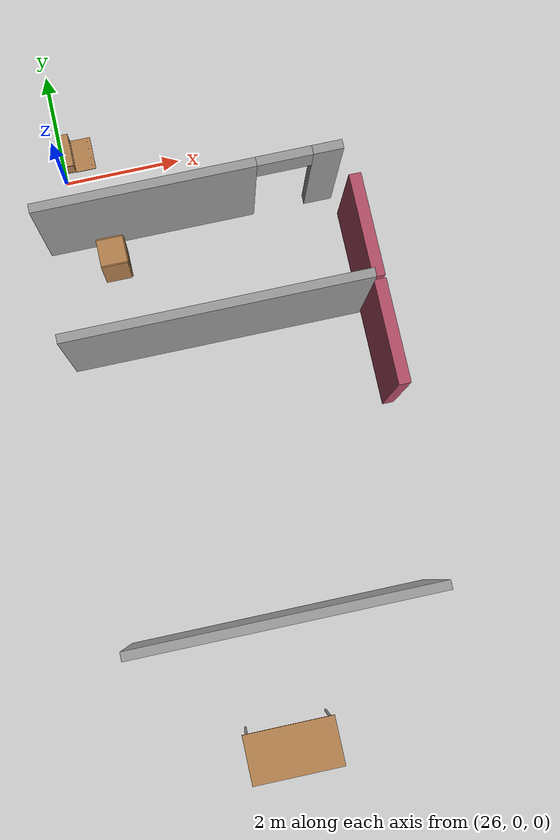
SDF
<sdf version="1.6">
 <world name="default">
  <model name="ground_plane">
   <static>1</static>
   <link name="link">
    <collision name="collision">
     <geometry><plane><normal>0 0 1</normal><size>100 100</size></plane></geometry>
     <surface><friction><ode><mu>100</mu><mu2>50</mu2></ode></friction></surface>
    </collision>
    <visual name="visual">
     <cast_shadows>0</cast_shadows>
     <geometry><plane><normal>0 0 1</normal><size>100 100</size></plane></geometry>
     <material>
      <script><uri>file://media/materials/scripts/gazebo.material</uri><name>Gazebo/Grey</name></script>
     </material>
    </visual>
   </link>
  </model>
  <model name="fin_se1f1.sdf">
   <pose>1.8125 -2.2901 0 0 -0 0</pose>
   <link name="Wall_192">
    <pose>26.1753 1.13284 0 0 -0 0</pose>
    <visual name="Wall_192_Visual_0">
     <pose>-0.694062 0 1.25 0 -0 0</pose>
     <geometry><box><size>3.61188 0.15 2.5</size></box></geometry>
     <material>
      <script><uri>file://media/materials/scripts/gazebo.material</uri><name>Gazebo/Grey</name></script>
      <ambient>1 1 1 1</ambient>
     </material>
     <meta><layer>0</layer></meta>
    </visual>
    <collision name="Wall_192_Collision_0">
     <geometry><box><size>3.61188 0.15 2.5</size></box></geometry>
     <pose>-0.694062 0 1.25 0 -0 0</pose>
    </collision>
    <visual name="Wall_192_Visual_1">
     <pose>2.25594 0 1.25 0 -0 0</pose>
     <geometry><box><size>0.488124 0.15 2.5</size></box></geometry>
     <material>
      <script><uri>file://media/materials/scripts/gazebo.material</uri><name>Gazebo/Grey</name></script>
      <ambient>1 1 1 1</ambient>
     </material>
     <meta><layer>0</layer></meta>
    </visual>
    <collision name="Wall_192_Collision_1">
     <geometry><box><size>0.488124 0.15 2.5</size></box></geometry>
     <pose>2.25594 0 1.25 0 -0 0</pose>
    </collision>
    <visual name="Wall_192_Visual_2">
     <pose>1.56188 0 2.25 0 -0 0</pose>
     <geometry><box><size>0.9 0.15 0.5</size></box></geometry>
     <material>
      <script><uri>file://media/materials/scripts/gazebo.material</uri><name>Gazebo/Grey</name></script>
      <ambient>1 1 1 1</ambient>
     </material>
     <meta><layer>0</layer></meta>
    </visual>
    <collision name="Wall_192_Collision_2">
     <geometry><box><size>0.9 0.15 0.5</size></box></geometry>
     <pose>1.56188 0 2.25 0 -0 0</pose>
    </collision>
   </link>
   <link name="Wall_194">
    <collision name="Wall_194_Collision">
     <geometry><box><size>5 0.15 2.5</size></box></geometry>
     <pose>0 0 1.25 0 -0 0</pose>
    </collision>
    <visual name="Wall_194_Visual">
     <pose>0 0 1.25 0 -0 0</pose>
     <geometry><box><size>5 0.15 2.5</size></box></geometry>
     <material>
      <script><uri>file://media/materials/scripts/gazebo.material</uri><name>Gazebo/Grey</name></script>
      <ambient>1 1 1 1</ambient>
     </material>
     <meta><layer>0</layer></meta>
    </visual>
    <pose>26.2059 -0.977886 0 0 -0 0</pose>
   </link>
   <link name="Wall_196">
    <collision name="Wall_196_Collision">
     <geometry><box><size>5 0.15 2.5</size></box></geometry>
     <pose>0 0 1.25 0 -0 0</pose>
    </collision>
    <visual name="Wall_196_Visual">
     <pose>0 0 1.25 0 -0 0</pose>
     <geometry><box><size>5 0.15 2.5</size></box></geometry>
     <material>
      <script><uri>file://media/materials/scripts/gazebo.material</uri><name>Gazebo/Grey</name></script>
      <ambient>1 1 1 1</ambient>
     </material>
     <meta><layer>0</layer></meta>
    </visual>
    <pose>26.2233 -5.83852 0 0 -0 0</pose>
   </link>
   <static>1</static>
  </model>
  <model name="table_14">
   <static>1</static>
   <link name="link">
    <collision name="surface">
     <pose>0 0 1 0 -0 0</pose>
     <geometry><box><size>1.5 0.8 0.03</size></box></geometry>
     <surface><friction><ode><mu>0.6</mu><mu2>0.6</mu2></ode></friction></surface>
    </collision>
    <visual name="visual1">
     <pose>0 0 1 0 -0 0</pose>
     <geometry><box><size>1.5 0.8 0.03</size></box></geometry>
     <material>
      <script><uri>file://media/materials/scripts/gazebo.material</uri><name>Gazebo/Wood</name></script>
     </material>
    </visual>
    <collision name="front_left_leg">
     <pose>0.68 0.38 0.5 0 -0 0</pose>
     <geometry><cylinder><radius>0.02</radius><length>1</length></cylinder></geometry>
    </collision>
    <visual name="front_left_leg">
     <pose>0.68 0.38 0.5 0 -0 0</pose>
     <geometry><cylinder><radius>0.02</radius><length>1</length></cylinder></geometry>
     <material>
      <script><uri>file://media/materials/scripts/gazebo.material</uri><name>Gazebo/Grey</name></script>
     </material>
    </visual>
    <collision name="front_right_leg">
     <pose>0.68 -0.38 0.5 0 -0 0</pose>
     <geometry><cylinder><radius>0.02</radius><length>1</length></cylinder></geometry>
    </collision>
    <visual name="front_right_leg">
     <pose>0.68 -0.38 0.5 0 -0 0</pose>
     <geometry><cylinder><radius>0.02</radius><length>1</length></cylinder></geometry>
     <material>
      <script><uri>file://media/materials/scripts/gazebo.material</uri><name>Gazebo/Grey</name></script>
     </material>
    </visual>
    <collision name="back_right_leg">
     <pose>-0.68 -0.38 0.5 0 -0 0</pose>
     <geometry><cylinder><radius>0.02</radius><length>1</length></cylinder></geometry>
    </collision>
    <visual name="back_right_leg">
     <pose>-0.68 -0.38 0.5 0 -0 0</pose>
     <geometry><cylinder><radius>0.02</radius><length>1</length></cylinder></geometry>
     <material>
      <script><uri>file://media/materials/scripts/gazebo.material</uri><name>Gazebo/Grey</name></script>
     </material>
    </visual>
    <collision name="back_left_leg">
     <pose>-0.68 0.38 0.5 0 -0 0</pose>
     <geometry><cylinder><radius>0.02</radius><length>1</length></cylinder></geometry>
    </collision>
    <visual name="back_left_leg">
     <pose>-0.68 0.38 0.5 0 -0 0</pose>
     <geometry><cylinder><radius>0.02</radius><length>1</length></cylinder></geometry>
     <material>
      <script><uri>file://media/materials/scripts/gazebo.material</uri><name>Gazebo/Grey</name></script>
     </material>
    </visual>
   </link>
   <pose>27.7645 -10.1765 0 0 -0 0</pose>
  </model>
  <model name="wooden_case">
   <link name="base">
    <pose>0 0 0.024 0 -0 0</pose>
    <inertial>
     <pose>-0.022184 0 0.171592 0 -0 0</pose>
     <mass>3.96264</mass>
     <inertia>
      <ixx>0.213536</ixx>
      <ixy>0</ixy>
      <ixz>0.000779377</ixz>
      <iyy>0.0708943</iyy>
      <iyz>0</iyz>
      <izz>0.154604</izz>
     </inertia>
    </inertial>
    <collision name="collision_back">
     <pose>-0.053975 0 0.1778 0 -0 0</pose>
     <geometry><box><size>0.01905 0.5461 0.3175</size></box></geometry>
     <surface>
      <contact>
       <poissons_ratio>0.347</poissons_ratio>
       <elastic_modulus>8.8e+09</elastic_modulus>
       <ode><kp>100000</kp><kd>100</kd><max_vel>100</max_vel><min_depth>0.001</min_depth></ode>
      </contact>
      <friction>
       <torsional>
        <coefficient>1</coefficient>
        <use_patch_radius>0</use_patch_radius>
        <surface_radius>0.01</surface_radius>
       </torsional>
      </friction>
     </surface>
    </collision>
    <visual name="visual_back">
     <pose>-0.053975 0 0.1778 0 -0 0</pose>
     <geometry><box><size>0.01905 0.5461 0.3175</size></box></geometry>
     <material>
      <script><uri>file://media/materials/scripts/gazebo.material</uri><name>Gazebo/Wood</name></script>
     </material>
    </visual>
    <collision name="collision_bottom">
     <pose>0 0 0.009525 0 -0 0</pose>
     <geometry><box><size>0.127 0.5842 0.01905</size></box></geometry>
     <surface>
      <contact>
       <poissons_ratio>0.347</poissons_ratio>
       <elastic_modulus>8.8e+09</elastic_modulus>
       <ode><kp>100000</kp><kd>100</kd><max_vel>100</max_vel><min_depth>0.001</min_depth></ode>
      </contact>
      <friction>
       <torsional>
        <coefficient>1</coefficient>
        <use_patch_radius>0</use_patch_radius>
        <surface_radius>0.01</surface_radius>
       </torsional>
      </friction>
     </surface>
    </collision>
    <visual name="visual_bottom">
     <pose>0 0 0.009525 0 -0 0</pose>
     <geometry><box><size>0.127 0.5842 0.01905</size></box></geometry>
     <material>
      <script><uri>file://media/materials/scripts/gazebo.material</uri><name>Gazebo/Wood</name></script>
     </material>
    </visual>
    <collision name="collision_top">
     <pose>0 0 0.346075 0 -0 0</pose>
     <geometry><box><size>0.127 0.5842 0.01905</size></box></geometry>
     <surface>
      <contact>
       <poissons_ratio>0.347</poissons_ratio>
       <elastic_modulus>8.8e+09</elastic_modulus>
       <ode><kp>100000</kp><kd>100</kd><max_vel>100</max_vel><min_depth>0.001</min_depth></ode>
      </contact>
      <friction>
       <torsional>
        <coefficient>1</coefficient>
        <use_patch_radius>0</use_patch_radius>
        <surface_radius>0.01</surface_radius>
       </torsional>
      </friction>
     </surface>
    </collision>
    <visual name="visual_top">
     <pose>0 0 0.346075 0 -0 0</pose>
     <geometry><box><size>0.127 0.5842 0.01905</size></box></geometry>
     <material>
      <script><uri>file://media/materials/scripts/gazebo.material</uri><name>Gazebo/Wood</name></script>
     </material>
    </visual>
    <collision name="collision_left">
     <pose>0 -0.282575 0.1778 0 -0 0</pose>
     <geometry><box><size>0.127 0.01905 0.3175</size></box></geometry>
     <surface>
      <contact>
       <poissons_ratio>0.347</poissons_ratio>
       <elastic_modulus>8.8e+09</elastic_modulus>
       <ode><kp>100000</kp><kd>100</kd><max_vel>100</max_vel><min_depth>0.001</min_depth></ode>
      </contact>
      <friction>
       <torsional>
        <coefficient>1</coefficient>
        <use_patch_radius>0</use_patch_radius>
        <surface_radius>0.01</surface_radius>
       </torsional>
      </friction>
     </surface>
    </collision>
    <visual name="visual_left">
     <pose>0 -0.282575 0.1778 0 -0 0</pose>
     <geometry><box><size>0.127 0.01905 0.3175</size></box></geometry>
     <material>
      <script><uri>file://media/materials/scripts/gazebo.material</uri><name>Gazebo/Wood</name></script>
     </material>
    </visual>
    <collision name="collision_right">
     <pose>0 0.282575 0.1778 0 -0 0</pose>
     <geometry><box><size>0.127 0.01905 0.3175</size></box></geometry>
     <surface>
      <contact>
       <poissons_ratio>0.347</poissons_ratio>
       <elastic_modulus>8.8e+09</elastic_modulus>
       <ode><kp>100000</kp><kd>100</kd><max_vel>100</max_vel><min_depth>0.001</min_depth></ode>
      </contact>
      <friction>
       <torsional>
        <coefficient>1</coefficient>
        <use_patch_radius>0</use_patch_radius>
        <surface_radius>0.01</surface_radius>
       </torsional>
      </friction>
     </surface>
    </collision>
    <visual name="visual_right">
     <pose>0 0.282575 0.1778 0 -0 0</pose>
     <geometry><box><size>0.127 0.01905 0.3175</size></box></geometry>
     <material>
      <script><uri>file://media/materials/scripts/gazebo.material</uri><name>Gazebo/Wood</name></script>
     </material>
    </visual>
    <collision name="collision_block_left">
     <pose>0.0095 -0.2151 -0.012 0 -0 0</pose>
     <geometry><box><size>0.108 0.05 0.024</size></box></geometry>
     <surface>
      <contact>
       <poissons_ratio>0.347</poissons_ratio>
       <elastic_modulus>8.8e+09</elastic_modulus>
       <ode><kp>100000</kp><kd>100</kd><max_vel>100</max_vel><min_depth>0.001</min_depth></ode>
      </contact>
      <friction>
       <torsional>
        <coefficient>1</coefficient>
        <use_patch_radius>0</use_patch_radius>
        <surface_radius>0.01</surface_radius>
       </torsional>
      </friction>
     </surface>
    </collision>
    <visual name="visual_block_left">
     <pose>0.0095 -0.2151 -0.012 0 -0 0</pose>
     <geometry><box><size>0.108 0.05 0.024</size></box></geometry>
     <material>
      <script><uri>file://media/materials/scripts/gazebo.material</uri><name>Gazebo/Wood</name></script>
     </material>
    </visual>
    <collision name="collision_block_right">
     <pose>0.0095 0.2151 -0.012 0 -0 0</pose>
     <geometry><box><size>0.108 0.05 0.024</size></box></geometry>
     <surface>
      <contact>
       <poissons_ratio>0.347</poissons_ratio>
       <elastic_modulus>8.8e+09</elastic_modulus>
       <ode><kp>100000</kp><kd>100</kd><max_vel>100</max_vel><min_depth>0.001</min_depth></ode>
      </contact>
      <friction>
       <torsional>
        <coefficient>1</coefficient>
        <use_patch_radius>0</use_patch_radius>
        <surface_radius>0.01</surface_radius>
       </torsional>
      </friction>
     </surface>
    </collision>
    <visual name="visual_block_right">
     <pose>0.0095 0.2151 -0.012 0 -0 0</pose>
     <geometry><box><size>0.108 0.05 0.024</size></box></geometry>
     <material>
      <script><uri>file://media/materials/scripts/gazebo.material</uri><name>Gazebo/Wood</name></script>
     </material>
    </visual>
   </link>
   <link name="lid">
    <pose>0.243775 0 0.009525 0 -0 0</pose>
    <inertial>
     <mass>1.97874</mass>
     <inertia>
      <ixx>0.0563367</ixx>
      <ixy>0</ixy>
      <ixz>0</ixz>
      <iyy>0.020911</iyy>
      <iyz>0</iyz>
      <izz>0.0771281</izz>
     </inertia>
    </inertial>
    <collision name="collision">
     <geometry><box><size>0.3556 0.5842 0.01905</size></box></geometry>
     <surface>
      <contact>
       <poissons_ratio>0.347</poissons_ratio>
       <elastic_modulus>8.8e+09</elastic_modulus>
       <ode><kp>100000</kp><kd>100</kd><max_vel>100</max_vel><min_depth>0.001</min_depth></ode>
      </contact>
      <friction>
       <torsional>
        <coefficient>1</coefficient>
        <use_patch_radius>0</use_patch_radius>
        <surface_radius>0.01</surface_radius>
       </torsional>
      </friction>
     </surface>
    </collision>
    <visual name="visual">
     <geometry><box><size>0.3556 0.5842 0.01905</size></box></geometry>
     <material>
      <script><uri>file://media/materials/scripts/gazebo.material</uri><name>Gazebo/Wood</name></script>
     </material>
    </visual>
    <visual name="tee_nut_1">
     <pose>0.122 -0.216 0 0 -0 0</pose>
     <geometry><cylinder><radius>0.00635</radius><length>0.0192405</length></cylinder></geometry>
     <material>
      <script><uri>file://media/materials/scripts/gazebo.material</uri><name>Gazebo/Grey</name></script>
     </material>
    </visual>
    <visual name="tee_nut_2">
     <pose>0.122 -0.088 0 0 -0 0</pose>
     <geometry><cylinder><radius>0.00635</radius><length>0.0192405</length></cylinder></geometry>
     <material>
      <script><uri>file://media/materials/scripts/gazebo.material</uri><name>Gazebo/Grey</name></script>
     </material>
    </visual>
    <visual name="tee_nut_3">
     <pose>0.122 0.088 0 0 -0 0</pose>
     <geometry><cylinder><radius>0.00635</radius><length>0.0192405</length></cylinder></geometry>
     <material>
      <script><uri>file://media/materials/scripts/gazebo.material</uri><name>Gazebo/Grey</name></script>
     </material>
    </visual>
    <visual name="tee_nut_4">
     <pose>0.122 0.216 0 0 -0 0</pose>
     <geometry><cylinder><radius>0.00635</radius><length>0.0192405</length></cylinder></geometry>
     <material>
      <script><uri>file://media/materials/scripts/gazebo.material</uri><name>Gazebo/Grey</name></script>
     </material>
    </visual>
   </link>
   <joint name="lid_hinge" type="revolute">
    <pose>-0.1778 0 0.01905 0 -0 0</pose>
    <parent>base</parent>
    <child>lid</child>
    <axis>
     <xyz>0 1 0</xyz>
     <limit><upper>0.523599</upper><lower>-1.5708</lower></limit>
     <use_parent_model_frame>0</use_parent_model_frame>
     <dynamics><spring_reference>0</spring_reference><spring_stiffness>0</spring_stiffness></dynamics>
    </axis>
   </joint>
   <pose>26.129 0.463112 -0.001057 0 -0.000428 0</pose>
  </model>
  <model name="cabinet">
   <static>1</static>
   <link name="cabinet_bottom_plate">
    <inertial>
     <pose>0 0 -1 0 -0 0</pose>
     <inertia><ixx>2.05</ixx><ixy>0</ixy><ixz>0</ixz><iyy>2.05</iyy><iyz>0</iyz><izz>2.05</izz></inertia>
     <mass>25</mass>
    </inertial>
    <collision name="cabinet_bottom_plate_geom">
     <pose>0 0 0.01 0 -0 0</pose>
     <geometry><box><size>0.45 0.45 0.02</size></box></geometry>
    </collision>
    <visual name="cabinet_bottom_plate_geom_visual">
     <pose>0 0 0.01 0 -0 0</pose>
     <geometry><box><size>0.45 0.45 0.02</size></box></geometry>
     <material>
      <script><uri>file://media/materials/scripts/gazebo.material</uri><name>Gazebo/Wood</name></script>
     </material>
    </visual>
    <collision name="cabinet_bottom_plate_geom_cabinet_back_plate">
     <pose>0.235 0 0.51 0 -0 0</pose>
     <geometry><box><size>0.02 0.45 1.02</size></box></geometry>
    </collision>
    <visual name="cabinet_bottom_plate_geom_cabinet_back_plate_visual">
     <pose>0.235 0 0.51 0 -0 0</pose>
     <geometry><box><size>0.02 0.45 1.02</size></box></geometry>
     <material>
      <script><uri>file://media/materials/scripts/gazebo.material</uri><name>Gazebo/Wood</name></script>
     </material>
    </visual>
    <collision name="cabinet_bottom_plate_geom_cabinet_left_plate">
     <pose>0 0.235 0.51 0 -0 0</pose>
     <geometry><box><size>0.45 0.02 1.02</size></box></geometry>
    </collision>
    <visual name="cabinet_bottom_plate_geom_cabinet_left_plate_visual">
     <pose>0 0.235 0.51 0 -0 0</pose>
     <geometry><box><size>0.45 0.02 1.02</size></box></geometry>
     <material>
      <script><uri>file://media/materials/scripts/gazebo.material</uri><name>Gazebo/Wood</name></script>
     </material>
    </visual>
    <collision name="cabinet_bottom_plate_geom_cabinet_middle_plate">
     <pose>0 0 0.51 0 -0 0</pose>
     <geometry><box><size>0.45 0.45 0.02</size></box></geometry>
    </collision>
    <visual name="cabinet_bottom_plate_geom_cabinet_middle_plate_visual">
     <pose>0 0 0.51 0 -0 0</pose>
     <geometry><box><size>0.45 0.45 0.02</size></box></geometry>
     <material>
      <script><uri>file://media/materials/scripts/gazebo.material</uri><name>Gazebo/Wood</name></script>
     </material>
    </visual>
    <collision name="cabinet_bottom_plate_geom_cabinet_right_plate">
     <pose>0 -0.235 0.51 0 -0 0</pose>
     <geometry><box><size>0.45 0.02 1.02</size></box></geometry>
    </collision>
    <visual name="cabinet_bottom_plate_geom_cabinet_right_plate_visual">
     <pose>0 -0.235 0.51 0 -0 0</pose>
     <geometry><box><size>0.45 0.02 1.02</size></box></geometry>
     <material>
      <script><uri>file://media/materials/scripts/gazebo.material</uri><name>Gazebo/Wood</name></script>
     </material>
    </visual>
    <collision name="cabinet_bottom_plate_geom_cabinet_top_plate">
     <pose>0 0 1.01 0 -0 0</pose>
     <geometry><box><size>0.45 0.45 0.02</size></box></geometry>
    </collision>
    <visual name="cabinet_bottom_plate_geom_cabinet_top_plate_visual">
     <pose>0 0 1.01 0 -0 0</pose>
     <geometry><box><size>0.45 0.45 0.02</size></box></geometry>
     <material>
      <script><uri>file://media/materials/scripts/gazebo.material</uri><name>Gazebo/Wood</name></script>
     </material>
    </visual>
   </link>
   <pose>26.5603 -1.66057 0 0 -0 0</pose>
  </model>
  <model name="doorOutside_clone_8_clone_2">
   <link name="link">
    <pose>0.155539 -0.366282 0.216958 0 -0 0</pose>
    <inertial>
     <mass>2.13199</mass>
     <inertia>
      <ixx>0.452656</ixx>
      <ixy>0</ixy>
      <ixz>0</ixz>
      <iyy>0.796738</iyy>
      <iyz>0</iyz>
      <izz>0.699414</izz>
     </inertia>
    </inertial>
    <visual name="visual">
     <geometry><box><size>1.71368 0.198843 2.05986</size></box></geometry>
     <material>
      <script><name>Gazebo/Grey</name><uri>file://media/materials/scripts/gazebo.material</uri></script>
      <ambient>0.7 0.3 0.4 1</ambient>
      <diffuse>0.7 0.7 0.7 1</diffuse>
      <specular>0.01 0.01 0.01 1</specular>
      <emissive>0 0 0 1</emissive>
      <shader type="vertex"><normal_map>__default__</normal_map></shader>
      <lighting>0</lighting>
     </material>
    </visual>
    <collision name="collision">
     <geometry><box><size>1.71368 0.198843 2.05986</size></box></geometry>
     <surface>
      <friction>
       <ode><mu>1</mu><mu2>1</mu2><fdir1>0 0 0</fdir1><slip1>0</slip1><slip2>0</slip2></ode>
       <torsional>
        <coefficient>1</coefficient>
        <patch_radius>0</patch_radius>
        <surface_radius>0</surface_radius>
        <use_patch_radius>1</use_patch_radius>
        <ode><slip>0</slip></ode>
       </torsional>
      </friction>
      <bounce><restitution_coefficient>0</restitution_coefficient><threshold>1e+06</threshold></bounce>
      <contact>
       <collide_without_contact>0</collide_without_contact>
       <collide_without_contact_bitmask>1</collide_without_contact_bitmask>
       <collide_bitmask>1</collide_bitmask>
       <ode>
        <soft_cfm>0</soft_cfm>
        <soft_erp>0.2</soft_erp>
        <kp>1e+13</kp>
        <kd>1</kd>
        <max_vel>0.01</max_vel>
        <min_depth>0</min_depth>
       </ode>
       <bullet>
        <split_impulse>1</split_impulse>
        <split_impulse_penetration_threshold>-0.01</split_impulse_penetration_threshold>
        <soft_cfm>0</soft_cfm>
        <soft_erp>0.2</soft_erp>
        <kp>1e+13</kp>
        <kd>1</kd>
       </bullet>
      </contact>
     </surface>
    </collision>
   </link>
   <static>1</static>
   <pose>30.2711 -2.54192 0.812972 1e-06 -0 1.57065</pose>
  </model>
  <model name="doorOutside_clone_8_clone_3">
   <link name="link">
    <pose>0.155539 -0.366282 0.216958 0 -0 0</pose>
    <inertial>
     <mass>2.13199</mass>
     <inertia>
      <ixx>0.452656</ixx>
      <ixy>0</ixy>
      <ixz>0</ixz>
      <iyy>0.796738</iyy>
      <iyz>0</iyz>
      <izz>0.699414</izz>
     </inertia>
    </inertial>
    <visual name="visual">
     <geometry><box><size>1.71368 0.198843 2.05986</size></box></geometry>
     <material>
      <script><name>Gazebo/Grey</name><uri>file://media/materials/scripts/gazebo.material</uri></script>
      <ambient>0.7 0.3 0.4 1</ambient>
      <diffuse>0.7 0.7 0.7 1</diffuse>
      <specular>0.01 0.01 0.01 1</specular>
      <emissive>0 0 0 1</emissive>
      <shader type="vertex"><normal_map>__default__</normal_map></shader>
      <lighting>0</lighting>
     </material>
    </visual>
    <collision name="collision">
     <geometry><box><size>1.71368 0.198843 2.05986</size></box></geometry>
     <surface>
      <friction>
       <ode><mu>1</mu><mu2>1</mu2><fdir1>0 0 0</fdir1><slip1>0</slip1><slip2>0</slip2></ode>
       <torsional>
        <coefficient>1</coefficient>
        <patch_radius>0</patch_radius>
        <surface_radius>0</surface_radius>
        <use_patch_radius>1</use_patch_radius>
        <ode><slip>0</slip></ode>
       </torsional>
      </friction>
      <bounce><restitution_coefficient>0</restitution_coefficient><threshold>1e+06</threshold></bounce>
      <contact>
       <collide_without_contact>0</collide_without_contact>
       <collide_without_contact_bitmask>1</collide_without_contact_bitmask>
       <collide_bitmask>1</collide_bitmask>
       <ode>
        <soft_cfm>0</soft_cfm>
        <soft_erp>0.2</soft_erp>
        <kp>1e+13</kp>
        <kd>1</kd>
        <max_vel>0.01</max_vel>
        <min_depth>0</min_depth>
       </ode>
       <bullet>
        <split_impulse>1</split_impulse>
        <split_impulse_penetration_threshold>-0.01</split_impulse_penetration_threshold>
        <soft_cfm>0</soft_cfm>
        <soft_erp>0.2</soft_erp>
        <kp>1e+13</kp>
        <kd>1</kd>
       </bullet>
      </contact>
     </surface>
    </collision>
   </link>
   <static>1</static>
   <pose>30.2712 -4.30008 0.812972 0 -0 1.57072</pose>
  </model>
 </world>
</sdf>
